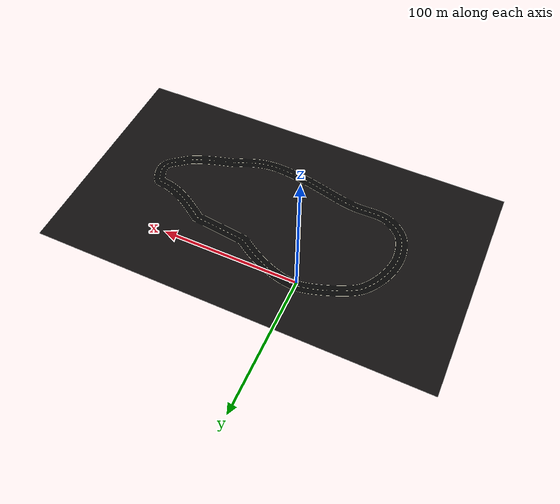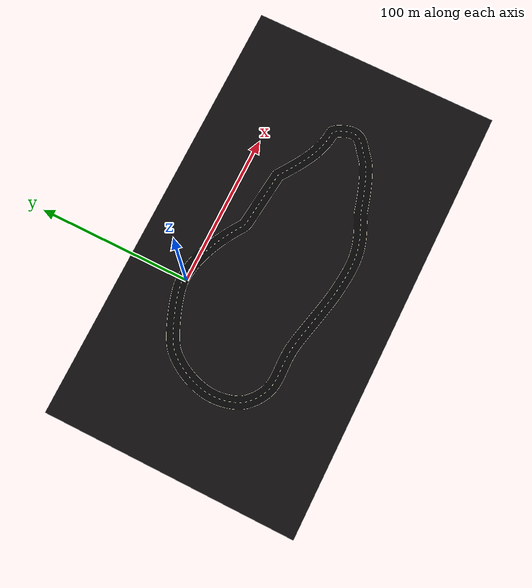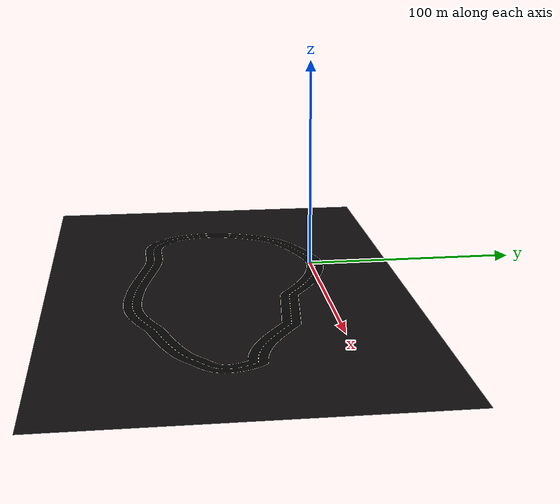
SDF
<sdf version="1.6">
 <world name="default">
  <light name="sun" type="directional">
   <pose>0 0 10 0 -0 0</pose>
   <diffuse>0.8 0.8 0.8 1</diffuse>
   <specular>0.1 0.1 0.1 1</specular>
   <attenuation>
    <range>1000</range>
    <constant>0.9</constant>
    <linear>0.01</linear>
    <quadratic>0.001</quadratic>
   </attenuation>
   <direction>-0.5 0.5 -1</direction>
  </light>
  <gravity>0 0 -9.8</gravity>
  <magnetic_field>6e-06 2.3e-05 -4.2e-05</magnetic_field>
  <atmosphere type="adiabatic"/>
  <physics default="0" name="default_physics" type="ode">
   <max_step_size>0.001</max_step_size>
   <real_time_factor>1</real_time_factor>
   <real_time_update_rate>1000</real_time_update_rate>
  </physics>
  <scene>
   <ambient>100.0 100.0 100.0 1.0</ambient>
   <shadows>1</shadows>
   <sky><clouds><speed>12</speed></clouds></sky>
  </scene>
  <spherical_coordinates>
   <surface_model>EARTH_WGS84</surface_model>
   <latitude_deg>0</latitude_deg>
   <longitude_deg>0</longitude_deg>
   <elevation>0</elevation>
   <heading_deg>0</heading_deg>
  </spherical_coordinates>
  <model name="race_track">
   <link name="race_track_link">
    <pose>88.291962 -17.762388 0 0 -0 0</pose>
    <inertial>
     <mass>1</mass>
     <inertia><ixx>1</ixx><ixy>0</ixy><ixz>0</ixz><iyy>1</iyy><iyz>0</iyz><izz>1</izz></inertia>
    </inertial>
    <visual name="race_track_visual">
     <geometry><mesh><uri>model://mesh_road.dae</uri></mesh></geometry>
     <material><shader type="vertex"><normal_map>__default__</normal_map></shader></material>
    </visual>
    <collision name="race_track_collision">
     <geometry><mesh><uri>model://mesh_road.dae</uri></mesh></geometry>
     <surface>
      <friction>
       <ode><mu>1</mu><mu2>1</mu2><fdir1>0 0 0</fdir1><slip1>0</slip1><slip2>0</slip2></ode>
       <torsional>
        <coefficient>1</coefficient>
        <patch_radius>0</patch_radius>
        <surface_radius>0</surface_radius>
        <use_patch_radius>1</use_patch_radius>
        <ode><slip>0</slip></ode>
       </torsional>
      </friction>
      <bounce><restitution_coefficient>0</restitution_coefficient><threshold>1e+06</threshold></bounce>
      <contact>
       <collide_without_contact>0</collide_without_contact>
       <collide_without_contact_bitmask>1</collide_without_contact_bitmask>
       <collide_bitmask>1</collide_bitmask>
       <ode>
        <soft_cfm>0</soft_cfm>
        <soft_erp>0.2</soft_erp>
        <kp>1e+13</kp>
        <kd>1</kd>
        <max_vel>0.01</max_vel>
        <min_depth>0</min_depth>
       </ode>
       <bullet>
        <split_impulse>1</split_impulse>
        <split_impulse_penetration_threshold>-0.01</split_impulse_penetration_threshold>
        <soft_cfm>0</soft_cfm>
        <soft_erp>0.2</soft_erp>
        <kp>1e+13</kp>
        <kd>1</kd>
       </bullet>
      </contact>
     </surface>
    </collision>
   </link>
   <static>1</static>
  </model>
 </world>
</sdf>
